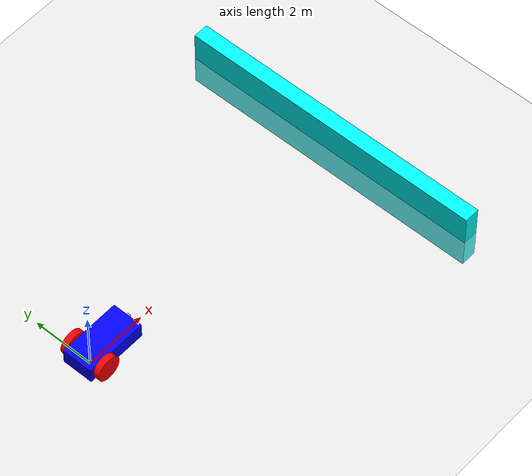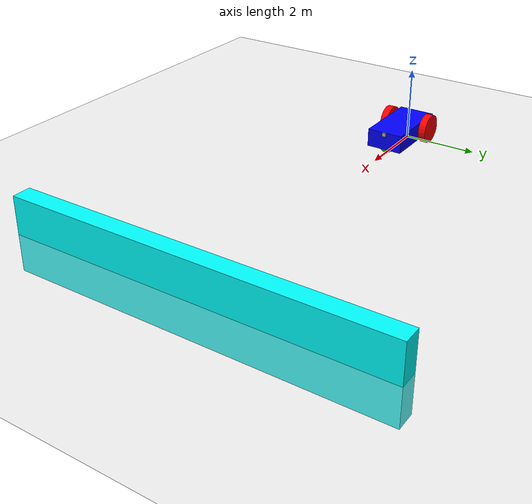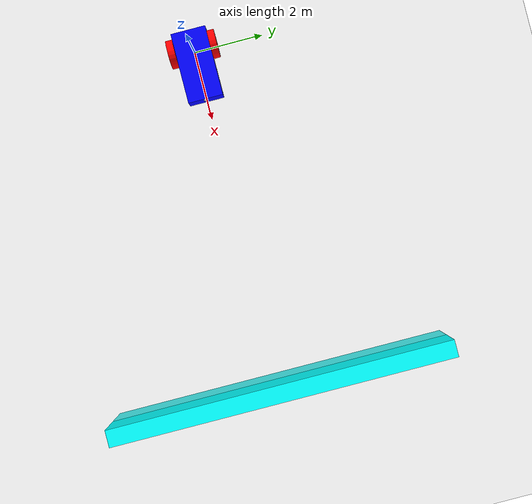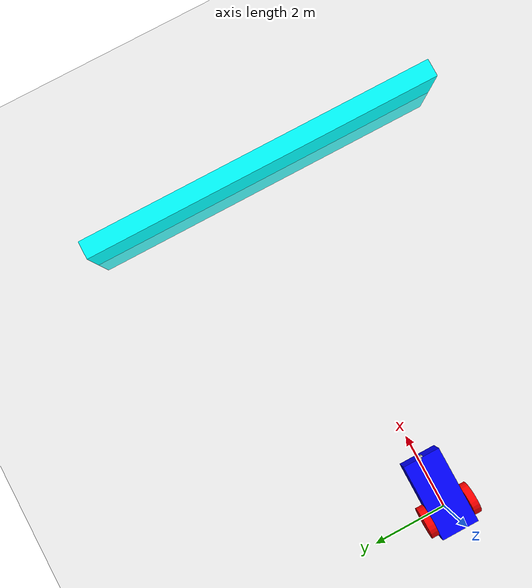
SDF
<sdf version="1.8">
 <world name="car_world">
  <physics name="1ms" type="ignored">
   <max_step_size>0.001</max_step_size>
   <real_time_factor>1.0</real_time_factor>
  </physics>
  <plugin filename="ignition-gazebo-physics-system" name="ignition::gazebo::systems::Physics"/>
  <plugin filename="ignition-gazebo-user-commands-system" name="ignition::gazebo::systems::UserCommands"/>
  <plugin filename="ignition-gazebo-scene-broadcaster-system" name="ignition::gazebo::systems::SceneBroadcaster"/>
  <plugin filename="libignition-gazebo-imu-system" name="ignition::gazebo::systems::Imu"/>
  <plugin filename="ignition-gazebo-sensors-system" name="gz::sim::systems::Sensors">
   <render_engine>ogre</render_engine>
  </plugin>
  <scene><ambient>1.0 1.0 1.0</ambient><background>0.8 0.8 0.8</background><grid>true</grid></scene>
  <light type="directional" name="sun">
   <pose>0 0 10 0 0 0</pose>
   <diffuse>0.8 0.8 0.8 1</diffuse>
   <specular>0.2 0.2 0.2 1</specular>
   <attenuation>
    <range>1000</range>
    <constant>0.9</constant>
    <linear>0.01</linear>
    <quadratic>0.001</quadratic>
   </attenuation>
   <direction>-0.5 0.1 -0.9</direction>
  </light>
  <model name="ground_plane">
   <static>true</static>
   <link name="link">
    <collision name="collision"><geometry><plane><normal>0 0 1</normal></plane></geometry></collision>
    <visual name="visual">
     <geometry><plane><normal>0 0 1</normal><size>100 100</size></plane></geometry>
     <material>
      <ambient>0.8 0.8 0.8 1</ambient>
      <diffuse>0.8 0.8 0.8 1</diffuse>
      <specular>0.8 0.8 0.8 1</specular>
     </material>
    </visual>
   </link>
  </model>
  <model name="wall">
   <static>true</static>
   <pose>10 0 0 0 0 0</pose>
   <link name="box">
    <visual name="visual">
     <geometry><box><size>0.5 10.0 2.0</size></box></geometry>
     <material>
      <ambient>0.0 1.0 1.0 1</ambient>
      <diffuse>0.0 1.0 1.0 1</diffuse>
      <specular>0.0 1.0 1.0 1</specular>
     </material>
    </visual>
    <collision name="collision"><geometry><box><size>0.5 10.0 2.0</size></box></geometry></collision>
   </link>
  </model>
  <model name="vehicle_blue" canonical_link="chassis">
   <pose relative_to="world">0 0 0 0 0 0</pose>
   <link name="chassis">
    <pose relative_to="__model__">0.5 0 0.4 0 0 0</pose>
    <inertial>
     <mass>1.14395</mass>
     <inertia>
      <ixx>0.095329</ixx>
      <ixy>0</ixy>
      <ixz>0</ixz>
      <iyy>0.381317</iyy>
      <iyz>0</iyz>
      <izz>0.476646</izz>
     </inertia>
    </inertial>
    <visual name="visual">
     <geometry><box><size>2.0 1.0 0.5</size></box></geometry>
     <material>
      <ambient>0.0 0.0 1.0 1</ambient>
      <diffuse>0.0 0.0 1.0 1</diffuse>
      <specular>0.0 0.0 1.0 1</specular>
     </material>
    </visual>
    <collision name="collision"><geometry><box><size>2.0 1.0 0.5</size></box></geometry></collision>
    <sensor name="imu_sensor" type="imu">
     <always_on>1</always_on>
     <update_rate>1</update_rate>
     <visualize>true</visualize>
     <topic>imu</topic>
    </sensor>
   </link>
   <link name="camera">
    <pose relative_to="chassis">1 0 0.2 0 0 0</pose>
    <inertial>
     <mass>0.1</mass>
     <inertia><ixx>0.000166667</ixx><iyy>0.000166667</iyy><izz>0.000166667</izz></inertia>
    </inertial>
    <collision name="collision"><geometry><box><size>0.1 0.1 0.1</size></box></geometry></collision>
    <visual name="visual"><geometry><box><size>0.1 0.1 0.1</size></box></geometry></visual>
    <sensor name="camera" type="camera">
     <camera>
      <horizontal_fov>1.047</horizontal_fov>
      <image><width>320</width><height>240</height></image>
      <clip><near>0.1</near><far>100</far></clip>
     </camera>
     <always_on>1</always_on>
     <update_rate>30</update_rate>
     <visualize>true</visualize>
     <topic>camera</topic>
    </sensor>
   </link>
   <link name="left_wheel">
    <pose relative_to="chassis">-0.5 0.6 0 -1.5707 0 0</pose>
    <inertial>
     <mass>1</mass>
     <inertia><ixx>0.043333</ixx><ixy>0</ixy><ixz>0</ixz><iyy>0.043333</iyy><iyz>0</iyz><izz>0.08</izz></inertia>
    </inertial>
    <visual name="visual">
     <geometry><cylinder><radius>0.4</radius><length>0.2</length></cylinder></geometry>
     <material>
      <ambient>1.0 0.0 0.0 1</ambient>
      <diffuse>1.0 0.0 0.0 1</diffuse>
      <specular>1.0 0.0 0.0 1</specular>
     </material>
    </visual>
    <collision name="collision">
     <geometry><cylinder><radius>0.4</radius><length>0.2</length></cylinder></geometry>
    </collision>
   </link>
   <link name="right_wheel">
    <pose relative_to="chassis">-0.5 -0.6 0 -1.5707 0 0</pose>
    <inertial>
     <mass>1</mass>
     <inertia><ixx>0.043333</ixx><ixy>0</ixy><ixz>0</ixz><iyy>0.043333</iyy><iyz>0</iyz><izz>0.08</izz></inertia>
    </inertial>
    <visual name="visual">
     <geometry><cylinder><radius>0.4</radius><length>0.2</length></cylinder></geometry>
     <material>
      <ambient>1.0 0.0 0.0 1</ambient>
      <diffuse>1.0 0.0 0.0 1</diffuse>
      <specular>1.0 0.0 0.0 1</specular>
     </material>
    </visual>
    <collision name="collision">
     <geometry><cylinder><radius>0.4</radius><length>0.2</length></cylinder></geometry>
    </collision>
   </link>
   <frame name="caster_frame" attached_to="chassis"><pose>0.8 0 -0.2 0 0 0</pose></frame>
   <link name="caster">
    <pose relative_to="caster_frame"/>
    <inertial>
     <mass>1</mass>
     <inertia><ixx>0.016</ixx><ixy>0</ixy><ixz>0</ixz><iyy>0.016</iyy><iyz>0</iyz><izz>0.016</izz></inertia>
    </inertial>
    <visual name="visual">
     <geometry><sphere><radius>0.2</radius></sphere></geometry>
     <material>
      <ambient>0.0 1 0.0 1</ambient>
      <diffuse>0.0 1 0.0 1</diffuse>
      <specular>0.0 1 0.0 1</specular>
     </material>
    </visual>
    <collision name="collision"><geometry><sphere><radius>0.2</radius></sphere></geometry></collision>
   </link>
   <joint name="left_wheel_joint" type="revolute">
    <pose relative_to="left_wheel"/>
    <parent>chassis</parent>
    <child>left_wheel</child>
    <axis>
     <xyz expressed_in="__model__">0 1 0</xyz>
     <limit><lower>-1.79769e+308</lower><upper>1.79769e+308</upper></limit>
    </axis>
   </joint>
   <joint name="right_wheel_joint" type="revolute">
    <pose relative_to="right_wheel"/>
    <parent>chassis</parent>
    <child>right_wheel</child>
    <axis>
     <xyz expressed_in="__model__">0 1 0</xyz>
     <limit><lower>-1.79769e+308</lower><upper>1.79769e+308</upper></limit>
    </axis>
   </joint>
   <joint name="caster_wheel" type="ball"><parent>chassis</parent><child>caster</child></joint>
   <plugin filename="libignition-gazebo-diff-drive-system" name="ignition::gazebo::systems::DiffDrive">
    <left_joint>left_wheel_joint</left_joint>
    <right_joint>right_wheel_joint</right_joint>
    <wheel_separation>1.2</wheel_separation>
    <wheel_radius>0.4</wheel_radius>
    <odom_publish_frequency>1</odom_publish_frequency>
    <topic>cmd_vel</topic>
   </plugin>
  </model>
  <plugin filename="libignition-gazebo-triggered-publisher-system.so" name="ignition::gazebo::systems::TriggeredPublisher">
   <input type="ignition.msgs.Int32" topic="/keyboard/keypress"><match field="data">16777235</match></input>
   <output type="ignition.msgs.Twist" topic="/cmd_vel">linear: {x: 0.5}, angular: {z: 0.0}</output>
  </plugin>
  <plugin filename="libignition-gazebo-triggered-publisher-system.so" name="ignition::gazebo::systems::TriggeredPublisher">
   <input type="ignition.msgs.Int32" topic="/keyboard/keypress"><match field="data">16777237</match></input>
   <output type="ignition.msgs.Twist" topic="/cmd_vel">linear: {x: -0.5}, angular: {z: 0.0}</output>
  </plugin>
  <plugin filename="libignition-gazebo-triggered-publisher-system.so" name="ignition::gazebo::systems::TriggeredPublisher">
   <input type="ignition.msgs.Int32" topic="/keyboard/keypress"><match field="data">16777236</match></input>
   <output type="ignition.msgs.Twist" topic="/cmd_vel">linear: {x: 0.0}, angular: {z: -0.5}</output>
  </plugin>
  <plugin filename="libignition-gazebo-triggered-publisher-system.so" name="ignition::gazebo::systems::TriggeredPublisher">
   <input type="ignition.msgs.Int32" topic="/keyboard/keypress"><match field="data">16777234</match></input>
   <output type="ignition.msgs.Twist" topic="/cmd_vel">linear: {x: 0.0}, angular: {z: 0.5}</output>
  </plugin>
 </world>
</sdf>
